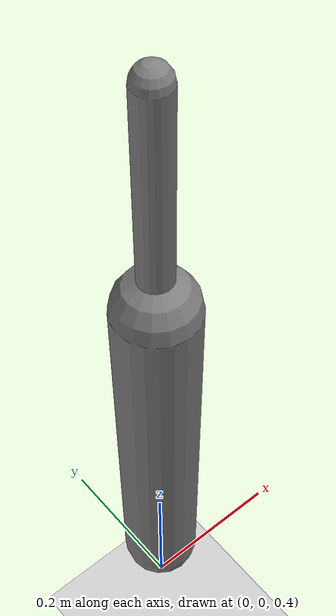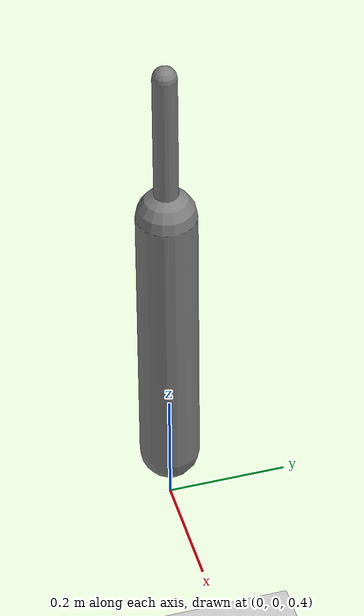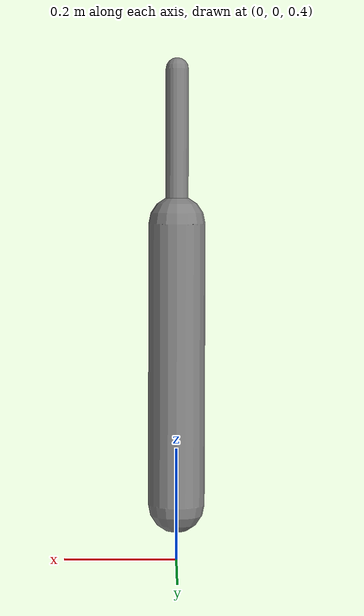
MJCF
<?xml version='1.0' encoding='UTF-8'?>
<mujoco model="RobotModel">
  <option gravity="0 0 -9.81" timestep="0.002" solver="CG" iterations="500" integrator="Euler"/>
  <worldbody>
    <geom name="Floor" type="plane" size="10 10 0.1" pos="0 0 0" rgba="0.8 0.8 0.8 1"/>
    <body name="Limb0" pos="0 0 0.5">
      <geom type="capsule" fromto="0 0 0 0 0 0.5" size="0.05" density="1000" contype="1" conaffinity="1"/>
      <body name="Limb0_79bad5d0" pos="0 0 0.5">
        <geom type="capsule" fromto="0 0 0 0 0 0.27103906906088343" size="0.02" density="800" contype="1" conaffinity="1"/>
        <joint name="Joint_Limb0_Limb0_79bad5d0_0" type="hinge" axis="0 1 0" range="-60 60"/>
      </body>
    </body>
  </worldbody>
  <actuator>
    <position name="position_Actuator_Joint_Limb0_Limb0_79bad5d0_0" joint="Joint_Limb0_Limb0_79bad5d0_0" gear="1.0"/>
  </actuator>
</mujoco>
